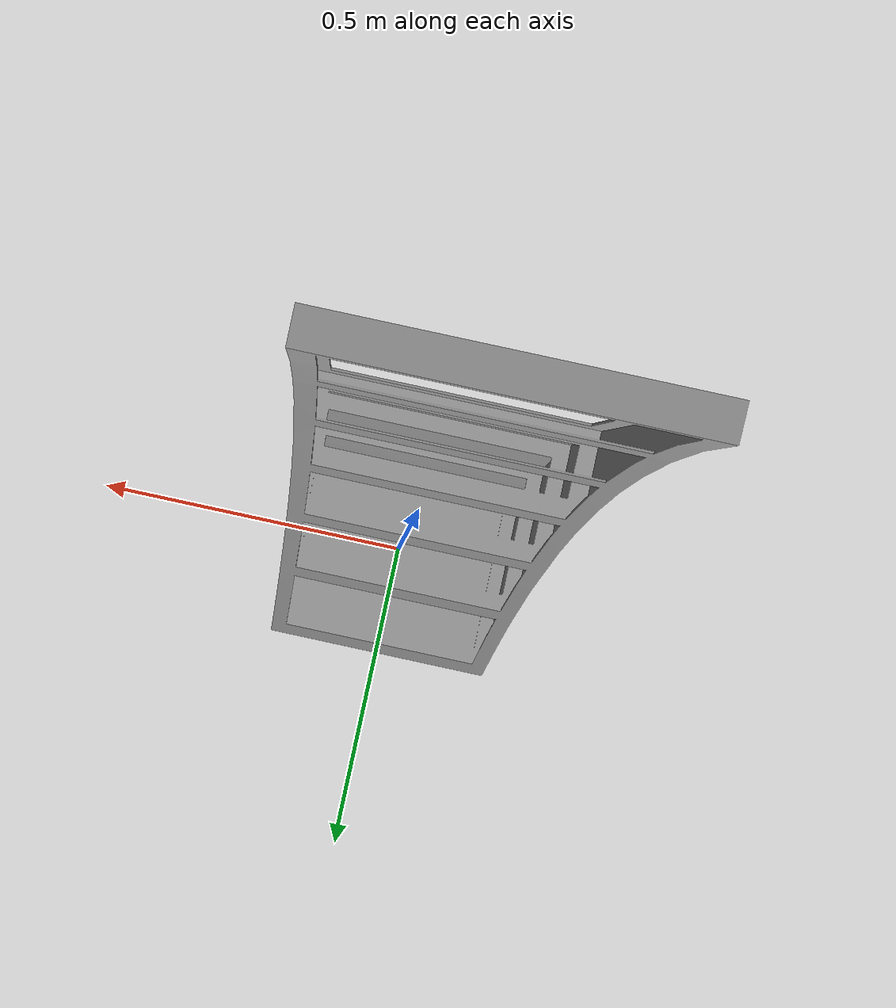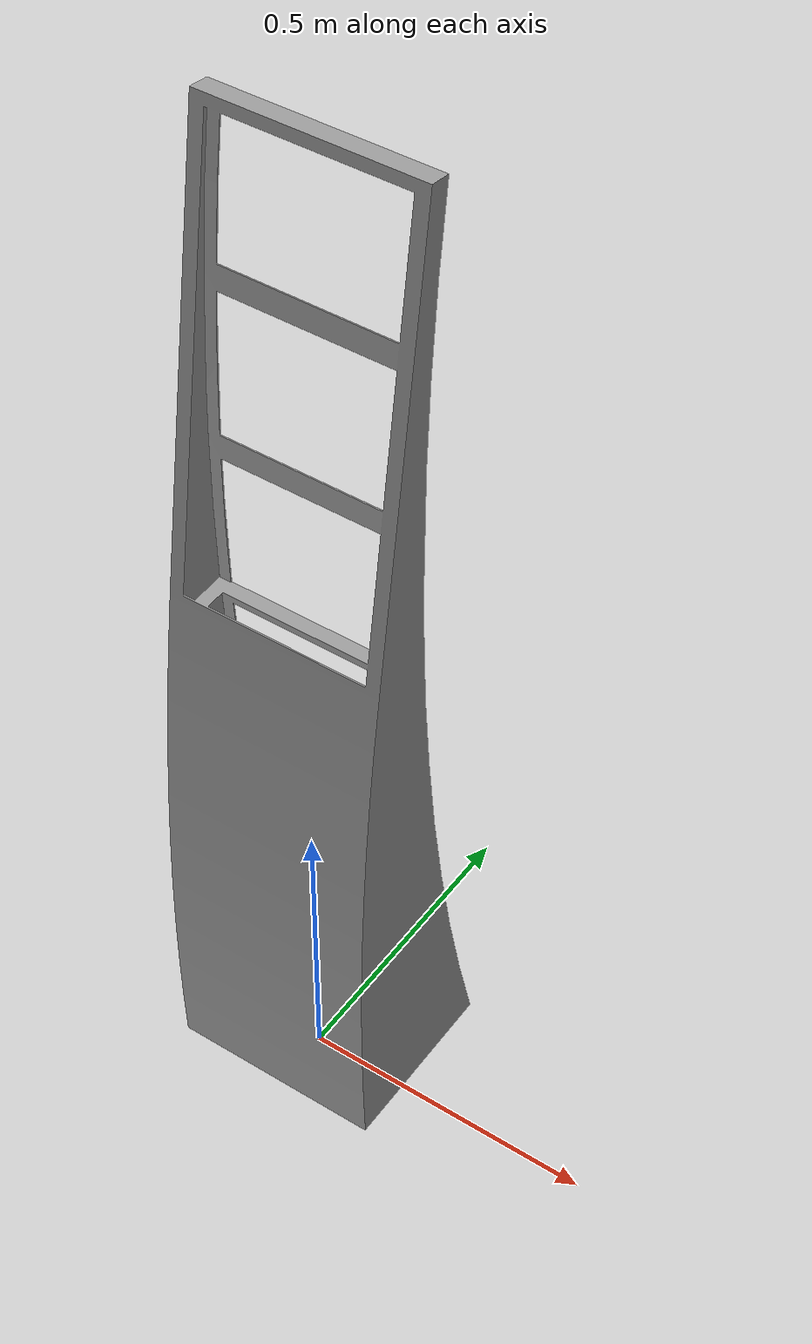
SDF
<?xml version='1.0' encoding='utf-8'?>
<sdf version="1.6">
  <model name="Kiosk">
   <static>true</static>
    <link name="body">
      <pose>0 0 1.45 1.42 0 0</pose>

      <visual name="visual">
        <geometry>
          <mesh>
            <uri>model://Kiosk/meshes/Kiosk.dae</uri>
	    <scale>0.01 0.01 0.01</scale>
          </mesh>
        </geometry>
    <material>
      <script>
        <uri>file://media/materials/scripts/gazebo.material</uri>
        <name>Gazebo/Grey</name>
      </script>
    </material>
      </visual>

      <collision name="collision">
	<pose>0 -0.55 -0.1 0.1507 0 0</pose>
        <geometry>
          <box>
		<size>0.35 1.8 0.35</size>
          </box>
        </geometry>
      </collision>

    </link>
  </model>
</sdf>
